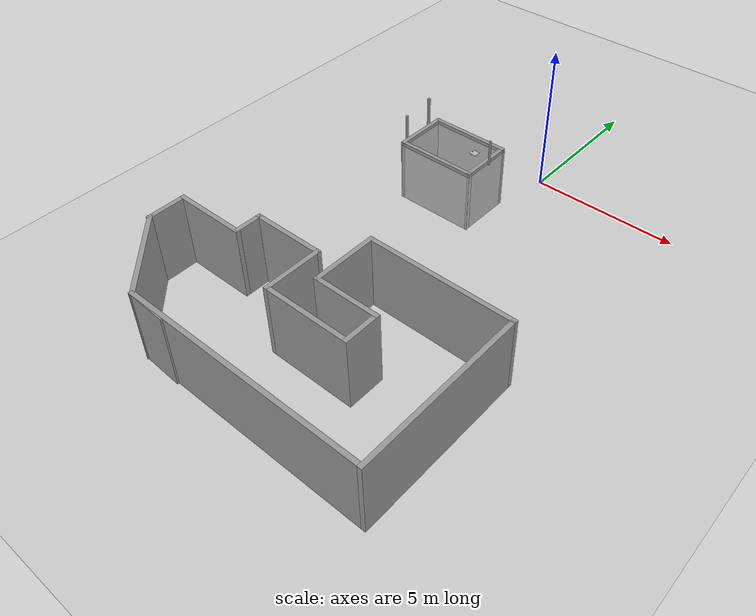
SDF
<sdf version="1.6">
 <world name="default">
  <light name="sun" type="directional">
   <pose>0 0 10 0 -0 0</pose>
   <diffuse>0.8 0.8 0.8 1</diffuse>
   <specular>0.2 0.2 0.2 1</specular>
   <attenuation>
    <range>1000</range>
    <constant>0.9</constant>
    <linear>0.01</linear>
    <quadratic>0.001</quadratic>
   </attenuation>
   <direction>-0.5 0.1 -0.9</direction>
  </light>
  <model name="ground_plane">
   <static>1</static>
   <link name="link">
    <collision name="collision">
     <geometry><plane><normal>0 0 1</normal><size>100 100</size></plane></geometry>
     <surface>
      <contact><collide_bitmask>65535</collide_bitmask></contact>
      <friction><ode><mu>100</mu><mu2>50</mu2></ode></friction>
     </surface>
    </collision>
    <visual name="visual">
     <cast_shadows>0</cast_shadows>
     <geometry><plane><normal>0 0 1</normal><size>100 100</size></plane></geometry>
     <material>
      <script><uri>file://media/materials/scripts/gazebo.material</uri><name>Gazebo/Grey</name></script>
     </material>
    </visual>
   </link>
  </model>
  <gravity>0 0 -9.8</gravity>
  <magnetic_field>6e-06 2.3e-05 -4.2e-05</magnetic_field>
  <atmosphere type="adiabatic"/>
  <physics name="default_physics" default="0" type="ode">
   <max_step_size>0.001</max_step_size>
   <real_time_factor>1</real_time_factor>
   <real_time_update_rate>1000</real_time_update_rate>
  </physics>
  <scene><ambient>0.4 0.4 0.4 1</ambient><background>0.7 0.7 0.7 1</background><shadows>1</shadows></scene>
  <spherical_coordinates>
   <surface_model>EARTH_WGS84</surface_model>
   <latitude_deg>0</latitude_deg>
   <longitude_deg>0</longitude_deg>
   <elevation>0</elevation>
   <heading_deg>0</heading_deg>
  </spherical_coordinates>
  <model name="closed_building">
   <pose>-0.767988 -10.8938 0 0 -0 0</pose>
   <link name="Wall_0">
    <collision name="Wall_0_Collision">
     <geometry><box><size>3.25 0.15 2.5</size></box></geometry>
     <pose>0 0 1.25 0 -0 0</pose>
    </collision>
    <visual name="Wall_0_Visual">
     <pose>0 0 1.25 0 -0 0</pose>
     <geometry><box><size>3.25 0.15 2.5</size></box></geometry>
     <material>
      <script><uri>file://media/materials/scripts/gazebo.material</uri><name>Gazebo/Grey</name></script>
      <ambient>1 1 1 1</ambient>
     </material>
     <meta><layer>0</layer></meta>
    </visual>
    <pose>-4.03447 -1.67669 0 0 0 -0.785398</pose>
   </link>
   <link name="Wall_10">
    <collision name="Wall_10_Collision">
     <geometry><box><size>2 0.15 2.5</size></box></geometry>
     <pose>0 0 1.25 0 -0 0</pose>
    </collision>
    <visual name="Wall_10_Visual">
     <pose>0 0 1.25 0 -0 0</pose>
     <geometry><box><size>2 0.15 2.5</size></box></geometry>
     <material>
      <script><uri>file://media/materials/scripts/gazebo.material</uri><name>Gazebo/Grey</name></script>
      <ambient>1 1 1 1</ambient>
     </material>
     <meta><layer>0</layer></meta>
    </visual>
    <pose>-0.438452 0.552296 0 0 -0 1.5708</pose>
   </link>
   <link name="Wall_11">
    <collision name="Wall_11_Collision">
     <geometry><box><size>2.5 0.15 2.5</size></box></geometry>
     <pose>0 0 1.25 0 -0 0</pose>
    </collision>
    <visual name="Wall_11_Visual">
     <pose>0 0 1.25 0 -0 0</pose>
     <geometry><box><size>2.5 0.15 2.5</size></box></geometry>
     <material>
      <script><uri>file://media/materials/scripts/gazebo.material</uri><name>Gazebo/Grey</name></script>
      <ambient>1 1 1 1</ambient>
     </material>
     <meta><layer>0</layer></meta>
    </visual>
    <pose>-1.61345 1.4773 0 0 -0 3.14159</pose>
   </link>
   <link name="Wall_12">
    <collision name="Wall_12_Collision">
     <geometry><box><size>1 0.15 2.5</size></box></geometry>
     <pose>0 0 1.25 0 -0 0</pose>
    </collision>
    <visual name="Wall_12_Visual">
     <pose>0 0 1.25 0 -0 0</pose>
     <geometry><box><size>1 0.15 2.5</size></box></geometry>
     <material>
      <script><uri>file://media/materials/scripts/gazebo.material</uri><name>Gazebo/Grey</name></script>
      <ambient>1 1 1 1</ambient>
     </material>
     <meta><layer>0</layer></meta>
    </visual>
    <pose>-2.78845 1.0523 0 0 0 -1.5708</pose>
   </link>
   <link name="Wall_13">
    <collision name="Wall_13_Collision">
     <geometry><box><size>2.5 0.15 2.5</size></box></geometry>
     <pose>0 0 1.25 0 -0 0</pose>
    </collision>
    <visual name="Wall_13_Visual">
     <pose>0 0 1.25 0 -0 0</pose>
     <geometry><box><size>2.5 0.15 2.5</size></box></geometry>
     <material>
      <script><uri>file://media/materials/scripts/gazebo.material</uri><name>Gazebo/Grey</name></script>
      <ambient>1 1 1 1</ambient>
     </material>
     <meta><layer>0</layer></meta>
    </visual>
    <pose>-3.96345 0.627296 0 0 -0 3.14159</pose>
   </link>
   <link name="Wall_14">
    <collision name="Wall_14_Collision">
     <geometry><box><size>1.358 0.15 2.5</size></box></geometry>
     <pose>0 0 1.25 0 -0 0</pose>
    </collision>
    <visual name="Wall_14_Visual">
     <pose>0 0 1.25 0 -0 0</pose>
     <geometry><box><size>1.358 0.15 2.5</size></box></geometry>
     <material>
      <script><uri>file://media/materials/scripts/gazebo.material</uri><name>Gazebo/Grey</name></script>
      <ambient>1 1 1 1</ambient>
     </material>
     <meta><layer>0</layer></meta>
    </visual>
    <pose>-5.13447 0.023312 0 0 0 -1.5642</pose>
   </link>
   <link name="Wall_2">
    <collision name="Wall_2_Collision">
     <geometry><box><size>1.42053 0.15 2.5</size></box></geometry>
     <pose>0 0 1.25 0 -0 0</pose>
    </collision>
    <visual name="Wall_2_Visual">
     <pose>0 0 1.25 0 -0 0</pose>
     <geometry><box><size>1.42053 0.15 2.5</size></box></geometry>
     <material>
      <script><uri>file://media/materials/scripts/gazebo.material</uri><name>Gazebo/Grey</name></script>
      <ambient>1 1 1 1</ambient>
     </material>
     <meta><layer>0</layer></meta>
    </visual>
    <pose>-2.30371 -2.79851 0 0 -0 3.10096</pose>
   </link>
   <link name="Wall_3">
    <collision name="Wall_3_Collision">
     <geometry><box><size>8.25 0.15 2.5</size></box></geometry>
     <pose>0 0 1.25 0 -0 0</pose>
    </collision>
    <visual name="Wall_3_Visual">
     <pose>0 0 1.25 0 -0 0</pose>
     <geometry><box><size>8.25 0.15 2.5</size></box></geometry>
     <material>
      <script><uri>file://media/materials/scripts/gazebo.material</uri><name>Gazebo/Grey</name></script>
      <ambient>1 1 1 1</ambient>
     </material>
     <meta><layer>0</layer></meta>
    </visual>
    <pose>1.11155 -2.7727 0 0 -0 0</pose>
   </link>
   <link name="Wall_4">
    <collision name="Wall_4_Collision">
     <geometry><box><size>5.75 0.15 2.5</size></box></geometry>
     <pose>0 0 1.25 0 -0 0</pose>
    </collision>
    <visual name="Wall_4_Visual">
     <pose>0 0 1.25 0 -0 0</pose>
     <geometry><box><size>5.75 0.15 2.5</size></box></geometry>
     <material>
      <script><uri>file://media/materials/scripts/gazebo.material</uri><name>Gazebo/Grey</name></script>
      <ambient>1 1 1 1</ambient>
     </material>
     <meta><layer>0</layer></meta>
    </visual>
    <pose>5.16155 0.027296 0 0 -0 1.5708</pose>
   </link>
   <link name="Wall_5">
    <collision name="Wall_5_Collision">
     <geometry><box><size>5 0.15 2.5</size></box></geometry>
     <pose>0 0 1.25 0 -0 0</pose>
    </collision>
    <visual name="Wall_5_Visual">
     <pose>0 0 1.25 0 -0 0</pose>
     <geometry><box><size>5 0.15 2.5</size></box></geometry>
     <material>
      <script><uri>file://media/materials/scripts/gazebo.material</uri><name>Gazebo/Grey</name></script>
      <ambient>1 1 1 1</ambient>
     </material>
     <meta><layer>0</layer></meta>
    </visual>
    <pose>2.73655 2.8273 0 0 -0 3.14159</pose>
   </link>
   <link name="Wall_6">
    <collision name="Wall_6_Collision">
     <geometry><box><size>2.25 0.15 2.5</size></box></geometry>
     <pose>0 0 1.25 0 -0 0</pose>
    </collision>
    <visual name="Wall_6_Visual">
     <pose>0 0 1.25 0 -0 0</pose>
     <geometry><box><size>2.25 0.15 2.5</size></box></geometry>
     <material>
      <script><uri>file://media/materials/scripts/gazebo.material</uri><name>Gazebo/Grey</name></script>
      <ambient>1 1 1 1</ambient>
     </material>
     <meta><layer>0</layer></meta>
    </visual>
    <pose>0.311548 1.7773 0 0 0 -1.5708</pose>
   </link>
   <link name="Wall_7">
    <collision name="Wall_7_Collision">
     <geometry><box><size>2.25 0.15 2.5</size></box></geometry>
     <pose>0 0 1.25 0 -0 0</pose>
    </collision>
    <visual name="Wall_7_Visual">
     <pose>0 0 1.25 0 -0 0</pose>
     <geometry><box><size>2.25 0.15 2.5</size></box></geometry>
     <material>
      <script><uri>file://media/materials/scripts/gazebo.material</uri><name>Gazebo/Grey</name></script>
      <ambient>1 1 1 1</ambient>
     </material>
     <meta><layer>0</layer></meta>
    </visual>
    <pose>1.36155 0.727296 0 0 -0 0</pose>
   </link>
   <link name="Wall_8">
    <collision name="Wall_8_Collision">
     <geometry><box><size>1.25 0.15 2.5</size></box></geometry>
     <pose>0 0 1.25 0 -0 0</pose>
    </collision>
    <visual name="Wall_8_Visual">
     <pose>0 0 1.25 0 -0 0</pose>
     <geometry><box><size>1.25 0.15 2.5</size></box></geometry>
     <material>
      <script><uri>file://media/materials/scripts/gazebo.material</uri><name>Gazebo/Grey</name></script>
      <ambient>1 1 1 1</ambient>
     </material>
     <meta><layer>0</layer></meta>
    </visual>
    <pose>2.41155 0.177296 0 0 0 -1.5708</pose>
   </link>
   <link name="Wall_9">
    <collision name="Wall_9_Collision">
     <geometry><box><size>3 0.15 2.5</size></box></geometry>
     <pose>0 0 1.25 0 -0 0</pose>
    </collision>
    <visual name="Wall_9_Visual">
     <pose>0 0 1.25 0 -0 0</pose>
     <geometry><box><size>3 0.15 2.5</size></box></geometry>
     <material>
      <script><uri>file://media/materials/scripts/gazebo.material</uri><name>Gazebo/Grey</name></script>
      <ambient>1 1 1 1</ambient>
     </material>
     <meta><layer>0</layer></meta>
    </visual>
    <pose>0.986548 -0.372704 0 0 -0 3.14159</pose>
   </link>
   <static>1</static>
  </model>
  <model name="ubot">
   <link name="base_footprint">
    <inertial>
     <pose>0.000644 0 0.020545 0 -0 0</pose>
     <mass>20.2</mass>
     <inertia>
      <ixx>0.060809</ixx>
      <ixy>0</ixy>
      <ixz>-0.000707921</ixz>
      <iyy>0.131634</iyy>
      <iyz>0</iyz>
      <izz>0.0710466</izz>
     </inertia>
    </inertial>
    <collision name="base_footprint_fixed_joint_lump__base_link_collision">
     <pose>0 0 0.04 0 -0 0</pose>
     <geometry><box><size>0.29 0.25 0.01</size></box></geometry>
    </collision>
    <collision name="base_footprint_fixed_joint_lump__sensor_laser_collision_1">
     <pose>0.065 0 0.075 0 -0 0</pose>
     <geometry><box><size>0.03 0.03 0.04</size></box></geometry>
    </collision>
    <visual name="base_footprint_visual"><geometry><box><size>0.001 0.001 0.001</size></box></geometry></visual>
    <visual name="base_footprint_fixed_joint_lump__base_link_visual_1">
     <pose>0 0 0.04 0 -0 0</pose>
     <geometry><box><size>0.29 0.25 0.01</size></box></geometry>
    </visual>
    <visual name="base_footprint_fixed_joint_lump__sensor_laser_visual_2">
     <pose>0.065 0 0.075 0 -0 0</pose>
     <geometry><box><size>0.03 0.03 0.04</size></box></geometry>
     <material><script><uri>__default__</uri><name>__default__</name></script></material>
    </visual>
    <sensor name="head_hokuyo_sensor" type="ray">
     <visualize>1</visualize>
     <update_rate>20</update_rate>
     <ray>
      <scan>
       <horizontal>
        <samples>1440</samples>
        <resolution>1</resolution>
        <min_angle>-3.14159</min_angle>
        <max_angle>3.14159</max_angle>
       </horizontal>
       <vertical><samples>1</samples><min_angle>0</min_angle><max_angle>0</max_angle></vertical>
      </scan>
      <range><min>0.1</min><max>3</max><resolution>0.01</resolution></range>
      <noise><type>gaussian</type><mean>0</mean><stddev>0.01</stddev></noise>
     </ray>
     <plugin name="gazebo_ros_head_hokuyo_controller" filename="libgazebo_ros_laser.so">
      <topicName>/ubot/laser_scan/scan</topicName>
      <frameName>sensor_laser</frameName>
      <robotNamespace>/</robotNamespace>
     </plugin>
     <pose>0.065 0 0.075 0 -0 0</pose>
    </sensor>
   </link>
   <link name="caster_wheel">
    <pose>-0.052 0 0.0175 0 -0 0</pose>
    <inertial>
     <mass>10</mass>
     <inertia>
      <ixx>0.001225</ixx>
      <ixy>0</ixy>
      <ixz>0</ixz>
      <iyy>0.001225</iyy>
      <iyz>0</iyz>
      <izz>0.001225</izz>
     </inertia>
    </inertial>
    <collision name="caster_wheel_collision">
     <geometry><sphere><radius>0.0175</radius></sphere></geometry>
    </collision>
    <visual name="caster_wheel_visual"><geometry><sphere><radius>0.0175</radius></sphere></geometry></visual>
   </link>
   <joint name="caster_wheel_joint" type="revolute">
    <child>caster_wheel</child>
    <parent>base_footprint</parent>
    <axis>
     <xyz>0 1.5 0</xyz>
     <limit><lower>-1e+16</lower><upper>1e+16</upper></limit>
     <dynamics><spring_reference>0</spring_reference><spring_stiffness>0</spring_stiffness></dynamics>
     <use_parent_model_frame>1</use_parent_model_frame>
    </axis>
   </joint>
   <link name="left_wheel">
    <pose>0.02 0.132 0.035 0 -0 0</pose>
    <inertial>
     <mass>10</mass>
     <inertia>
      <ixx>0.00308333</ixx>
      <ixy>0</ixy>
      <ixz>0</ixz>
      <iyy>0.00308333</iyy>
      <iyz>0</iyz>
      <izz>0.006125</izz>
     </inertia>
    </inertial>
    <collision name="left_wheel_collision">
     <pose>0 0 0 1.5708 -0 0</pose>
     <geometry><cylinder><length>0.005</length><radius>0.035</radius></cylinder></geometry>
    </collision>
    <visual name="left_wheel_visual">
     <pose>0 0 0 1.5708 -0 0</pose>
     <geometry><cylinder><length>0.005</length><radius>0.035</radius></cylinder></geometry>
    </visual>
   </link>
   <joint name="left_wheel_joint" type="revolute">
    <child>left_wheel</child>
    <parent>base_footprint</parent>
    <axis>
     <xyz>0 1 0</xyz>
     <limit><lower>-1e+16</lower><upper>1e+16</upper></limit>
     <dynamics><spring_reference>0</spring_reference><spring_stiffness>0</spring_stiffness></dynamics>
     <use_parent_model_frame>1</use_parent_model_frame>
    </axis>
   </joint>
   <link name="right_wheel">
    <pose>0.02 -0.132 0.035 0 -0 0</pose>
    <inertial>
     <mass>10</mass>
     <inertia>
      <ixx>0.00308333</ixx>
      <ixy>0</ixy>
      <ixz>0</ixz>
      <iyy>0.00308333</iyy>
      <iyz>0</iyz>
      <izz>0.006125</izz>
     </inertia>
    </inertial>
    <collision name="right_wheel_collision">
     <pose>0 0 0 1.5708 -0 0</pose>
     <geometry><cylinder><length>0.005</length><radius>0.035</radius></cylinder></geometry>
    </collision>
    <visual name="right_wheel_visual">
     <pose>0 0 0 1.5708 -0 0</pose>
     <geometry><cylinder><length>0.005</length><radius>0.035</radius></cylinder></geometry>
    </visual>
   </link>
   <joint name="right_wheel_joint" type="revolute">
    <child>right_wheel</child>
    <parent>base_footprint</parent>
    <axis>
     <xyz>0 1 0</xyz>
     <limit><lower>-1e+16</lower><upper>1e+16</upper></limit>
     <dynamics><spring_reference>0</spring_reference><spring_stiffness>0</spring_stiffness></dynamics>
     <use_parent_model_frame>1</use_parent_model_frame>
    </axis>
   </joint>
   <static>0</static>
   <plugin name="differential_drive_controller" filename="libgazebo_ros_diff_drive.so">
    <alwaysOn>false</alwaysOn>
    <legacyMode>false</legacyMode>
    <updateRate>20</updateRate>
    <leftJoint>left_wheel_joint</leftJoint>
    <rightJoint>right_wheel_joint</rightJoint>
    <wheelSeparation>0.15</wheelSeparation>
    <wheelDiameter>0.07</wheelDiameter>
    <torque>20</torque>
    <commandTopic>/ubot/base_controller/cmd_vel</commandTopic>
    <odometryTopic>/ubot/base_controller/odom</odometryTopic>
    <odometryFrame>odom</odometryFrame>
    <robotBaseFrame>base_footprint</robotBaseFrame>
    <robotNamespace>/</robotNamespace>
   </plugin>
   <pose>-2.78101 -0.126016 1.2e-05 2e-06 -2e-06 3.09944</pose>
  </model>
  <model name="eurobot_arena">
   <pose>-3.59492 -0.341874 -2.37482 0 -0 0</pose>
   <link name="Wall_0">
    <collision name="Wall_0_Collision">
     <geometry><box><size>2.11182 0.15 2.5</size></box></geometry>
     <pose>0 0 1.25 0 -0 0</pose>
    </collision>
    <visual name="Wall_0_Visual">
     <pose>0 0 1.25 0 -0 0</pose>
     <geometry><box><size>2.11182 0.15 2.5</size></box></geometry>
     <material>
      <script><uri>file://media/materials/scripts/gazebo.material</uri><name>Gazebo/Grey</name></script>
      <ambient>1 1 1 1</ambient>
     </material>
     <meta><layer>0</layer></meta>
    </visual>
    <pose>-1.48418 0 0 0 0 -1.5775</pose>
   </link>
   <link name="Wall_1">
    <collision name="Wall_1_Collision">
     <geometry><box><size>3.11835 0.15 2.5</size></box></geometry>
     <pose>0 0 1.25 0 -0 0</pose>
    </collision>
    <visual name="Wall_1_Visual">
     <pose>0 0 1.25 0 -0 0</pose>
     <geometry><box><size>3.11835 0.15 2.5</size></box></geometry>
     <material>
      <script><uri>file://media/materials/scripts/gazebo.material</uri><name>Gazebo/Grey</name></script>
      <ambient>1 1 1 1</ambient>
     </material>
     <meta><layer>0</layer></meta>
    </visual>
    <pose>0 -0.980889 0 0 -0 0</pose>
   </link>
   <link name="Wall_2">
    <collision name="Wall_2_Collision">
     <geometry><box><size>2.11182 0.15 2.5</size></box></geometry>
     <pose>0 0 1.25 0 -0 0</pose>
    </collision>
    <visual name="Wall_2_Visual">
     <pose>0 0 1.25 0 -0 0</pose>
     <geometry><box><size>2.11182 0.15 2.5</size></box></geometry>
     <material>
      <script><uri>file://media/materials/scripts/gazebo.material</uri><name>Gazebo/Grey</name></script>
      <ambient>1 1 1 1</ambient>
     </material>
     <meta><layer>0</layer></meta>
    </visual>
    <pose>1.48418 0 0 0 -0 1.56409</pose>
   </link>
   <link name="Wall_3">
    <collision name="Wall_3_Collision">
     <geometry><box><size>3.11835 0.15 2.5</size></box></geometry>
     <pose>0 0 1.25 0 -0 0</pose>
    </collision>
    <visual name="Wall_3_Visual">
     <pose>0 0 1.25 0 -0 0</pose>
     <geometry><box><size>3.11835 0.15 2.5</size></box></geometry>
     <material>
      <script><uri>file://media/materials/scripts/gazebo.material</uri><name>Gazebo/Grey</name></script>
      <ambient>1 1 1 1</ambient>
     </material>
     <meta><layer>0</layer></meta>
    </visual>
    <pose>0.006575 0.974314 0 0 -0 3.14159</pose>
   </link>
   <static>1</static>
  </model>
  <model name="unit_cylinder">
   <pose>-5.21338 0.231984 0.5 0 -0 0</pose>
   <link name="link">
    <inertial>
     <mass>1</mass>
     <inertia><ixx>0.145833</ixx><ixy>0</ixy><ixz>0</ixz><iyy>0.145833</iyy><iyz>0</iyz><izz>0.125</izz></inertia>
    </inertial>
    <collision name="collision">
     <geometry><cylinder><radius>0.0591885</radius><length>1.3105</length></cylinder></geometry>
    </collision>
    <visual name="visual">
     <geometry><cylinder><radius>0.0591885</radius><length>1.3105</length></cylinder></geometry>
     <material>
      <script><name>Gazebo/Grey</name><uri>file://media/materials/scripts/gazebo.material</uri></script>
     </material>
    </visual>
   </link>
  </model>
  <model name="unit_cylinder_0">
   <pose>-5.23799 -0.981756 0.5 0 -0 0</pose>
   <link name="link">
    <inertial>
     <mass>1</mass>
     <inertia><ixx>0.145833</ixx><ixy>0</ixy><ixz>0</ixz><iyy>0.145833</iyy><iyz>0</iyz><izz>0.125</izz></inertia>
    </inertial>
    <collision name="collision">
     <geometry><cylinder><radius>0.050954</radius><length>1</length></cylinder></geometry>
    </collision>
    <visual name="visual">
     <geometry><cylinder><radius>0.050954</radius><length>1</length></cylinder></geometry>
     <material>
      <script><name>Gazebo/Grey</name><uri>file://media/materials/scripts/gazebo.material</uri></script>
     </material>
    </visual>
   </link>
  </model>
  <model name="unit_cylinder_1">
   <pose>-1.989 -0.299836 0.5 0 -0 0</pose>
   <link name="link">
    <inertial>
     <mass>1</mass>
     <inertia><ixx>0.145833</ixx><ixy>0</ixy><ixz>0</ixz><iyy>0.145833</iyy><iyz>0</iyz><izz>0.125</izz></inertia>
    </inertial>
    <collision name="collision">
     <geometry><cylinder><radius>0.043664</radius><length>1</length></cylinder></geometry>
    </collision>
    <visual name="visual">
     <geometry><cylinder><radius>0.043664</radius><length>1</length></cylinder></geometry>
     <material>
      <script><name>Gazebo/Grey</name><uri>file://media/materials/scripts/gazebo.material</uri></script>
     </material>
    </visual>
   </link>
  </model>
 </world>
</sdf>
